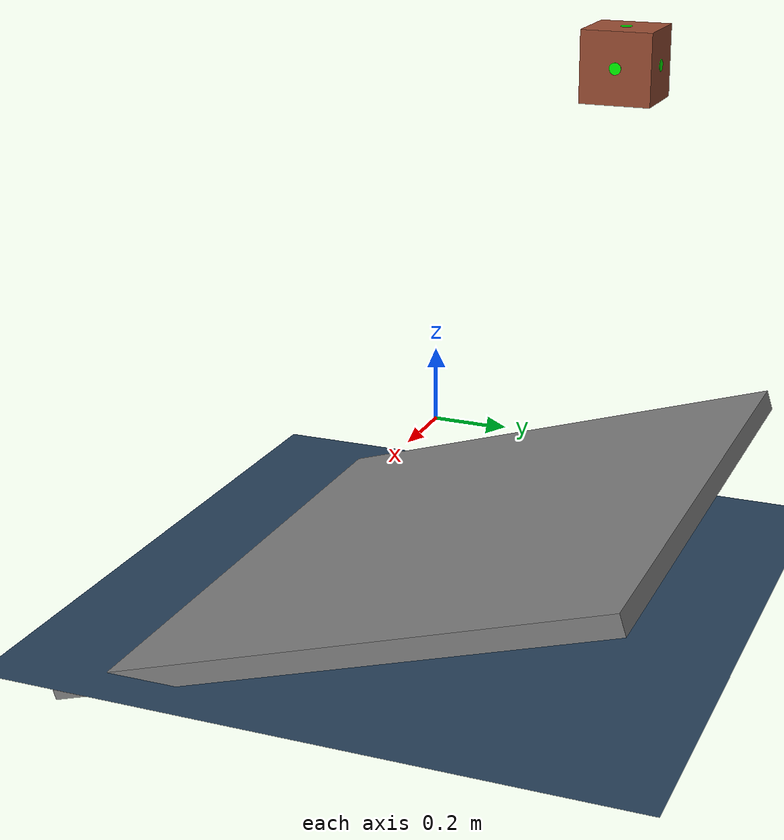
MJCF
<mujoco model="touch_sensor_incline_test">
  <compiler eulerseq="XYZ" fitaabb="true" angle="radian" autolimits="true"/>
  <option timestep="0.001" gravity="0 0 -9.81"/>

  <asset>
     <texture name="skybox" type="skybox" builtin="gradient" rgb1="0.2 0.3 0.4" rgb2="0 0 0" width="1000" height="1000" mark="random" random="0.001" markrgb="1 1 1"/>
     <texture type="2d" name="groundplane" builtin="checker" mark="edge" rgb1="0.2 0.3 0.4" rgb2="0.1 0.2 0.3" markrgb="0.8 0.8 0.8" width="1000" height="1000"/>
     <material name="groundplane" texture="groundplane" texuniform="true" texrepeat="5 5" reflectance="0.2"/>
     <material name="incline_material" rgba="0.5 0.5 0.5 1"/>
     <material name="cube_material" rgba="0.60 0.30 0.20 1"/>
  </asset>

  <worldbody>
   <geom name="floor" pos="0 0 -0.5" size="0 0 1" type="plane" material="groundplane"/>
   <light directional="true" diffuse=".8 .8 .8" specular=".2 .2 .2" pos="0 0 5" dir="0 0 -1"/>

    <!-- inclined plane -->
    <body name="incline" pos="0 0 -.35">
      <geom name="incline_plane" type="box" size="0.8 0.8 0.03" pos="0 0 0" euler="0.3 0 0" material="incline_material"/>
    </body>

    <body name="cube" pos="0 0.5 1">
      <joint type="free"/>
      <geom name="cube_geom" type="box" size="0.09 0.09 0.09" material="cube_material" mass="10"/>

      <!-- bottom face -->
      <site name="bottom_face" type="box" size="0.1 0.1 0.001" pos="0 0 -0.1" rgba="0 0 1 0"/>
      <site name="bottom_indicator" type="cylinder" size="0.015 0.001" pos="0 0 -0.09"  rgba="0 1 0 1"/>

      <!-- top face -->
      <site name="top_face" type="box" size="0.1 0.1 0.001" pos="0 0 0.1" rgba="0 0 1 0"/>
      <geom name="top_indicator" type="cylinder" size="0.015 0.001" pos="0 0 0.09"  rgba="0 1 0 1"/>

      <!-- front face -->
      <site name="front_face" type="box" size="0.1 0.001 0.1" pos="0 0.1 0" rgba="0 0 1 0"/>
      <geom name="front_indicator" type="cylinder" size="0.015 0.001" pos="0 0.09 0" euler="1.57 0 0" rgba="0 1 0 1"/>

      <!-- back face -->
      <site name="back_face" type="box" size="0.1 0.001 0.1" pos="0 -0.1 0" rgba="0 0 1 0"/>
      <geom name="back_indicator" type="cylinder" size="0.015 0.001" pos="0 -0.09 0" euler="1.57 0 0" rgba="0 1 0 1"/>

      <!-- right face -->
      <site name="right_face" type="box" size="0.001 0.1 0.1" pos="0.1 0 0" rgba="0 0 1 0"/>
      <geom name="right_indicator" type="cylinder" size="0.015 0.001" pos="0.09 0 0" euler="0 1.57 0" rgba="0 1 0 1"/>

      <!-- left face -->
      <site name="left_face" type="box" size="0.001 0.1 0.1" pos="-0.1 0 0" rgba="0 0 1 0"/>
      <geom name="left_indicator" type="cylinder" size="0.015 0.001" pos="-0.09 0 0" euler="0 1.57 0" rgba="0 1 0 1"/>
    </body>
  </worldbody>

  <sensor>
    <!-- 6 touch sensors for the 6 faces -->
    <touch name="touch_bottom" site="bottom_face"/>
    <touch name="touch_top" site="top_face"/>
    <touch name="touch_front" site="front_face"/>
    <touch name="touch_back" site="back_face"/>
    <touch name="touch_right" site="right_face"/>
    <touch name="touch_left" site="left_face"/>
  </sensor>
</mujoco>
